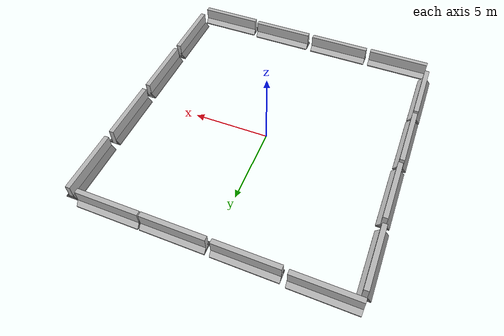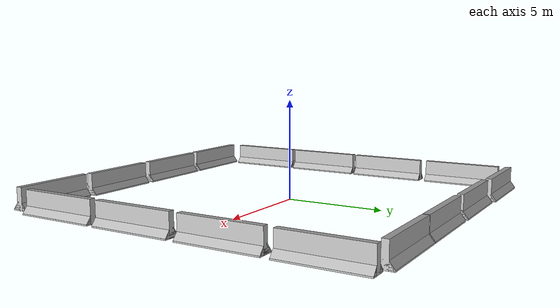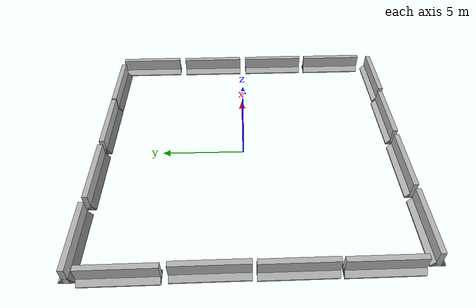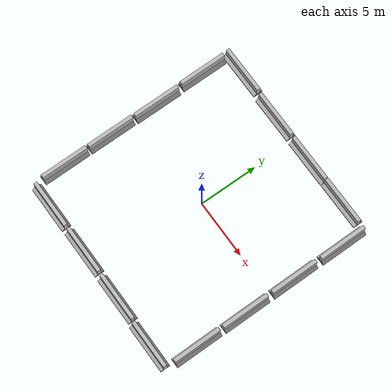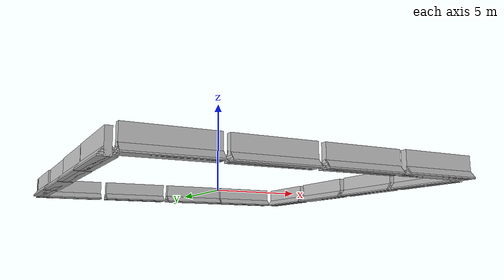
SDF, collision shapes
<?xml version='1.0'?>
<sdf version='1.7'>
  <model name='simple_barriers'>
    <model name='jersey_barrier'>
      <static>1</static>
      <link name='link'>
        <visual name='visual'>
          <geometry>
            <mesh>
              <uri>model://jersey_barrier/meshes/jersey_barrier.dae</uri>
            </mesh>
          </geometry>
        </visual>
        <collision name='upright'>
          <pose>0 0 0.5715 0 -0 0</pose>
          <geometry>
            <box>
              <size>4.06542 0.3063 1.143</size>
            </box>
          </geometry>
          <surface/>
        </collision>
        <collision name='base'>
          <pose>0 0 0.032258 0 -0 0</pose>
          <geometry>
            <box>
              <size>4.06542 0.8107 0.064516</size>
            </box>
          </geometry>
          <surface/>
        </collision>
        <collision name='base2'>
          <pose>0 0 0.1 0 -0 0</pose>
          <geometry>
            <box>
              <size>4.06542 0.65 0.1</size>
            </box>
          </geometry>
          <surface/>
        </collision>
        <collision name='base3'>
          <pose>0 0 0.2 0 -0 0</pose>
          <geometry>
            <box>
              <size>4.06542 0.5 0.1</size>
            </box>
          </geometry>
          <surface/>
        </collision>
        <collision name='left-angle'>
          <pose>0 -0.224 0.2401 0.9 -0 0</pose>
          <geometry>
            <box>
              <size>4.06542 0.5 0.064516</size>
            </box>
          </geometry>
          <surface/>
        </collision>
        <collision name='right-angle'>
          <pose>0 0.224 0.2401 -0.9 0 0</pose>
          <geometry>
            <box>
              <size>4.06542 0.5 0.064516</size>
            </box>
          </geometry>
          <surface/>
        </collision>
      </link>
      <pose>6.72232 -9.57254 0 0 -0 0</pose>
    </model>
    <model name='jersey_barrier_clone'>
      <static>1</static>
      <link name='link'>
        <visual name='visual'>
          <geometry>
            <mesh>
              <uri>model://jersey_barrier/meshes/jersey_barrier.dae</uri>
            </mesh>
          </geometry>
        </visual>
        <collision name='upright'>
          <pose>0 0 0.5715 0 -0 0</pose>
          <geometry>
            <box>
              <size>4.06542 0.3063 1.143</size>
            </box>
          </geometry>
          <surface/>
        </collision>
        <collision name='base'>
          <pose>0 0 0.032258 0 -0 0</pose>
          <geometry>
            <box>
              <size>4.06542 0.8107 0.064516</size>
            </box>
          </geometry>
          <surface/>
        </collision>
        <collision name='base2'>
          <pose>0 0 0.1 0 -0 0</pose>
          <geometry>
            <box>
              <size>4.06542 0.65 0.1</size>
            </box>
          </geometry>
          <surface/>
        </collision>
        <collision name='base3'>
          <pose>0 0 0.2 0 -0 0</pose>
          <geometry>
            <box>
              <size>4.06542 0.5 0.1</size>
            </box>
          </geometry>
          <surface/>
        </collision>
        <collision name='left-angle'>
          <pose>0 -0.224 0.2401 0.9 -0 0</pose>
          <geometry>
            <box>
              <size>4.06542 0.5 0.064516</size>
            </box>
          </geometry>
          <surface/>
        </collision>
        <collision name='right-angle'>
          <pose>0 0.224 0.2401 -0.9 0 0</pose>
          <geometry>
            <box>
              <size>4.06542 0.5 0.064516</size>
            </box>
          </geometry>
          <surface/>
        </collision>
      </link>
      <pose>2.41736 -9.45601 0 0 -0 0</pose>
    </model>
    <model name='jersey_barrier_clone_0'>
      <static>1</static>
      <link name='link'>
        <visual name='visual'>
          <geometry>
            <mesh>
              <uri>model://jersey_barrier/meshes/jersey_barrier.dae</uri>
            </mesh>
          </geometry>
        </visual>
        <collision name='upright'>
          <pose>0 0 0.5715 0 -0 0</pose>
          <geometry>
            <box>
              <size>4.06542 0.3063 1.143</size>
            </box>
          </geometry>
          <surface/>
        </collision>
        <collision name='base'>
          <pose>0 0 0.032258 0 -0 0</pose>
          <geometry>
            <box>
              <size>4.06542 0.8107 0.064516</size>
            </box>
          </geometry>
          <surface/>
        </collision>
        <collision name='base2'>
          <pose>0 0 0.1 0 -0 0</pose>
          <geometry>
            <box>
              <size>4.06542 0.65 0.1</size>
            </box>
          </geometry>
          <surface/>
        </collision>
        <collision name='base3'>
          <pose>0 0 0.2 0 -0 0</pose>
          <geometry>
            <box>
              <size>4.06542 0.5 0.1</size>
            </box>
          </geometry>
          <surface/>
        </collision>
        <collision name='left-angle'>
          <pose>0 -0.224 0.2401 0.9 -0 0</pose>
          <geometry>
            <box>
              <size>4.06542 0.5 0.064516</size>
            </box>
          </geometry>
          <surface/>
        </collision>
        <collision name='right-angle'>
          <pose>0 0.224 0.2401 -0.9 0 0</pose>
          <geometry>
            <box>
              <size>4.06542 0.5 0.064516</size>
            </box>
          </geometry>
          <surface/>
        </collision>
      </link>
      <pose>-1.99235 -9.42689 0 0 -0 0</pose>
    </model>
    <model name='jersey_barrier_clone_1'>
      <static>1</static>
      <link name='link'>
        <visual name='visual'>
          <geometry>
            <mesh>
              <uri>model://jersey_barrier/meshes/jersey_barrier.dae</uri>
            </mesh>
          </geometry>
        </visual>
        <collision name='upright'>
          <pose>0 0 0.5715 0 -0 0</pose>
          <geometry>
            <box>
              <size>4.06542 0.3063 1.143</size>
            </box>
          </geometry>
          <surface/>
        </collision>
        <collision name='base'>
          <pose>0 0 0.032258 0 -0 0</pose>
          <geometry>
            <box>
              <size>4.06542 0.8107 0.064516</size>
            </box>
          </geometry>
          <surface/>
        </collision>
        <collision name='base2'>
          <pose>0 0 0.1 0 -0 0</pose>
          <geometry>
            <box>
              <size>4.06542 0.65 0.1</size>
            </box>
          </geometry>
          <surface/>
        </collision>
        <collision name='base3'>
          <pose>0 0 0.2 0 -0 0</pose>
          <geometry>
            <box>
              <size>4.06542 0.5 0.1</size>
            </box>
          </geometry>
          <surface/>
        </collision>
        <collision name='left-angle'>
          <pose>0 -0.224 0.2401 0.9 -0 0</pose>
          <geometry>
            <box>
              <size>4.06542 0.5 0.064516</size>
            </box>
          </geometry>
          <surface/>
        </collision>
        <collision name='right-angle'>
          <pose>0 0.224 0.2401 -0.9 0 0</pose>
          <geometry>
            <box>
              <size>4.06542 0.5 0.064516</size>
            </box>
          </geometry>
          <surface/>
        </collision>
      </link>
      <pose>-6.36451 -9.45293 0 0 -0 0</pose>
    </model>
    <model name='jersey_barrier_clone_1_clone_clone'>
      <static>1</static>
      <link name='link'>
        <visual name='visual'>
          <geometry>
            <mesh>
              <uri>model://jersey_barrier/meshes/jersey_barrier.dae</uri>
            </mesh>
          </geometry>
        </visual>
        <collision name='upright'>
          <pose>0 0 0.5715 0 -0 0</pose>
          <geometry>
            <box>
              <size>4.06542 0.3063 1.143</size>
            </box>
          </geometry>
          <surface/>
        </collision>
        <collision name='base'>
          <pose>0 0 0.032258 0 -0 0</pose>
          <geometry>
            <box>
              <size>4.06542 0.8107 0.064516</size>
            </box>
          </geometry>
          <surface/>
        </collision>
        <collision name='base2'>
          <pose>0 0 0.1 0 -0 0</pose>
          <geometry>
            <box>
              <size>4.06542 0.65 0.1</size>
            </box>
          </geometry>
          <surface/>
        </collision>
        <collision name='base3'>
          <pose>0 0 0.2 0 -0 0</pose>
          <geometry>
            <box>
              <size>4.06542 0.5 0.1</size>
            </box>
          </geometry>
          <surface/>
        </collision>
        <collision name='left-angle'>
          <pose>0 -0.224 0.2401 0.9 -0 0</pose>
          <geometry>
            <box>
              <size>4.06542 0.5 0.064516</size>
            </box>
          </geometry>
          <surface/>
        </collision>
        <collision name='right-angle'>
          <pose>0 0.224 0.2401 -0.9 0 0</pose>
          <geometry>
            <box>
              <size>4.06542 0.5 0.064516</size>
            </box>
          </geometry>
          <surface/>
        </collision>
      </link>
      <pose>-6.6933 8.73444 0 0 -0 0</pose>
    </model>
    <model name='jersey_barrier_clone_1_clone_clone_0'>
      <static>1</static>
      <link name='link'>
        <visual name='visual'>
          <geometry>
            <mesh>
              <uri>model://jersey_barrier/meshes/jersey_barrier.dae</uri>
            </mesh>
          </geometry>
        </visual>
        <collision name='upright'>
          <pose>0 0 0.5715 0 -0 0</pose>
          <geometry>
            <box>
              <size>4.06542 0.3063 1.143</size>
            </box>
          </geometry>
          <surface/>
        </collision>
        <collision name='base'>
          <pose>0 0 0.032258 0 -0 0</pose>
          <geometry>
            <box>
              <size>4.06542 0.8107 0.064516</size>
            </box>
          </geometry>
          <surface/>
        </collision>
        <collision name='base2'>
          <pose>0 0 0.1 0 -0 0</pose>
          <geometry>
            <box>
              <size>4.06542 0.65 0.1</size>
            </box>
          </geometry>
          <surface/>
        </collision>
        <collision name='base3'>
          <pose>0 0 0.2 0 -0 0</pose>
          <geometry>
            <box>
              <size>4.06542 0.5 0.1</size>
            </box>
          </geometry>
          <surface/>
        </collision>
        <collision name='left-angle'>
          <pose>0 -0.224 0.2401 0.9 -0 0</pose>
          <geometry>
            <box>
              <size>4.06542 0.5 0.064516</size>
            </box>
          </geometry>
          <surface/>
        </collision>
        <collision name='right-angle'>
          <pose>0 0.224 0.2401 -0.9 0 0</pose>
          <geometry>
            <box>
              <size>4.06542 0.5 0.064516</size>
            </box>
          </geometry>
          <surface/>
        </collision>
      </link>
      <pose>-2.28503 8.63557 0 0 -0 0</pose>
    </model>
    <model name='jersey_barrier_clone_1_clone_clone_1'>
      <static>1</static>
      <link name='link'>
        <visual name='visual'>
          <geometry>
            <mesh>
              <uri>model://jersey_barrier/meshes/jersey_barrier.dae</uri>
            </mesh>
          </geometry>
        </visual>
        <collision name='upright'>
          <pose>0 0 0.5715 0 -0 0</pose>
          <geometry>
            <box>
              <size>4.06542 0.3063 1.143</size>
            </box>
          </geometry>
          <surface/>
        </collision>
        <collision name='base'>
          <pose>0 0 0.032258 0 -0 0</pose>
          <geometry>
            <box>
              <size>4.06542 0.8107 0.064516</size>
            </box>
          </geometry>
          <surface/>
        </collision>
        <collision name='base2'>
          <pose>0 0 0.1 0 -0 0</pose>
          <geometry>
            <box>
              <size>4.06542 0.65 0.1</size>
            </box>
          </geometry>
          <surface/>
        </collision>
        <collision name='base3'>
          <pose>0 0 0.2 0 -0 0</pose>
          <geometry>
            <box>
              <size>4.06542 0.5 0.1</size>
            </box>
          </geometry>
          <surface/>
        </collision>
        <collision name='left-angle'>
          <pose>0 -0.224 0.2401 0.9 -0 0</pose>
          <geometry>
            <box>
              <size>4.06542 0.5 0.064516</size>
            </box>
          </geometry>
          <surface/>
        </collision>
        <collision name='right-angle'>
          <pose>0 0.224 0.2401 -0.9 0 0</pose>
          <geometry>
            <box>
              <size>4.06542 0.5 0.064516</size>
            </box>
          </geometry>
          <surface/>
        </collision>
      </link>
      <pose>2.07504 8.61102 0 0 -0 0</pose>
    </model>
    <model name='jersey_barrier_clone_1_clone_clone_1_clone'>
      <static>1</static>
      <link name='link'>
        <visual name='visual'>
          <geometry>
            <mesh>
              <uri>model://jersey_barrier/meshes/jersey_barrier.dae</uri>
            </mesh>
          </geometry>
        </visual>
        <collision name='upright'>
          <pose>0 0 0.5715 0 -0 0</pose>
          <geometry>
            <box>
              <size>4.06542 0.3063 1.143</size>
            </box>
          </geometry>
          <surface/>
        </collision>
        <collision name='base'>
          <pose>0 0 0.032258 0 -0 0</pose>
          <geometry>
            <box>
              <size>4.06542 0.8107 0.064516</size>
            </box>
          </geometry>
          <surface/>
        </collision>
        <collision name='base2'>
          <pose>0 0 0.1 0 -0 0</pose>
          <geometry>
            <box>
              <size>4.06542 0.65 0.1</size>
            </box>
          </geometry>
          <surface/>
        </collision>
        <collision name='base3'>
          <pose>0 0 0.2 0 -0 0</pose>
          <geometry>
            <box>
              <size>4.06542 0.5 0.1</size>
            </box>
          </geometry>
          <surface/>
        </collision>
        <collision name='left-angle'>
          <pose>0 -0.224 0.2401 0.9 -0 0</pose>
          <geometry>
            <box>
              <size>4.06542 0.5 0.064516</size>
            </box>
          </geometry>
          <surface/>
        </collision>
        <collision name='right-angle'>
          <pose>0 0.224 0.2401 -0.9 0 0</pose>
          <geometry>
            <box>
              <size>4.06542 0.5 0.064516</size>
            </box>
          </geometry>
          <surface/>
        </collision>
      </link>
      <pose>6.22276 8.61449 0 0 -0 0</pose>
    </model>
    <model name='jersey_barrier_clone_2_clone_clone'>
      <static>1</static>
      <link name='link'>
        <visual name='visual'>
          <geometry>
            <mesh>
              <uri>model://jersey_barrier/meshes/jersey_barrier.dae</uri>
            </mesh>
          </geometry>
        </visual>
        <collision name='upright'>
          <pose>0 0 0.5715 0 -0 0</pose>
          <geometry>
            <box>
              <size>4.06542 0.3063 1.143</size>
            </box>
          </geometry>
          <surface/>
        </collision>
        <collision name='base'>
          <pose>0 0 0.032258 0 -0 0</pose>
          <geometry>
            <box>
              <size>4.06542 0.8107 0.064516</size>
            </box>
          </geometry>
          <surface/>
        </collision>
        <collision name='base2'>
          <pose>0 0 0.1 0 -0 0</pose>
          <geometry>
            <box>
              <size>4.06542 0.65 0.1</size>
            </box>
          </geometry>
          <surface/>
        </collision>
        <collision name='base3'>
          <pose>0 0 0.2 0 -0 0</pose>
          <geometry>
            <box>
              <size>4.06542 0.5 0.1</size>
            </box>
          </geometry>
          <surface/>
        </collision>
        <collision name='left-angle'>
          <pose>0 -0.224 0.2401 0.9 -0 0</pose>
          <geometry>
            <box>
              <size>4.06542 0.5 0.064516</size>
            </box>
          </geometry>
          <surface/>
        </collision>
        <collision name='right-angle'>
          <pose>0 0.224 0.2401 -0.9 0 0</pose>
          <geometry>
            <box>
              <size>4.06542 0.5 0.064516</size>
            </box>
          </geometry>
          <surface/>
        </collision>
      </link>
      <pose>-8.52553 -6.72648 0 0 0 -1.56654</pose>
    </model>
    <model name='jersey_barrier_clone_2_clone_clone_0'>
      <static>1</static>
      <link name='link'>
        <visual name='visual'>
          <geometry>
            <mesh>
              <uri>model://jersey_barrier/meshes/jersey_barrier.dae</uri>
            </mesh>
          </geometry>
        </visual>
        <collision name='upright'>
          <pose>0 0 0.5715 0 -0 0</pose>
          <geometry>
            <box>
              <size>4.06542 0.3063 1.143</size>
            </box>
          </geometry>
          <surface/>
        </collision>
        <collision name='base'>
          <pose>0 0 0.032258 0 -0 0</pose>
          <geometry>
            <box>
              <size>4.06542 0.8107 0.064516</size>
            </box>
          </geometry>
          <surface/>
        </collision>
        <collision name='base2'>
          <pose>0 0 0.1 0 -0 0</pose>
          <geometry>
            <box>
              <size>4.06542 0.65 0.1</size>
            </box>
          </geometry>
          <surface/>
        </collision>
        <collision name='base3'>
          <pose>0 0 0.2 0 -0 0</pose>
          <geometry>
            <box>
              <size>4.06542 0.5 0.1</size>
            </box>
          </geometry>
          <surface/>
        </collision>
        <collision name='left-angle'>
          <pose>0 -0.224 0.2401 0.9 -0 0</pose>
          <geometry>
            <box>
              <size>4.06542 0.5 0.064516</size>
            </box>
          </geometry>
          <surface/>
        </collision>
        <collision name='right-angle'>
          <pose>0 0.224 0.2401 -0.9 0 0</pose>
          <geometry>
            <box>
              <size>4.06542 0.5 0.064516</size>
            </box>
          </geometry>
          <surface/>
        </collision>
      </link>
      <pose>-8.52348 -2.48786 0 0 0 -1.56654</pose>
    </model>
    <model name='jersey_barrier_clone_2_clone_clone_0_clone'>
      <static>1</static>
      <link name='link'>
        <visual name='visual'>
          <geometry>
            <mesh>
              <uri>model://jersey_barrier/meshes/jersey_barrier.dae</uri>
            </mesh>
          </geometry>
        </visual>
        <collision name='upright'>
          <pose>0 0 0.5715 0 -0 0</pose>
          <geometry>
            <box>
              <size>4.06542 0.3063 1.143</size>
            </box>
          </geometry>
          <surface/>
        </collision>
        <collision name='base'>
          <pose>0 0 0.032258 0 -0 0</pose>
          <geometry>
            <box>
              <size>4.06542 0.8107 0.064516</size>
            </box>
          </geometry>
          <surface/>
        </collision>
        <collision name='base2'>
          <pose>0 0 0.1 0 -0 0</pose>
          <geometry>
            <box>
              <size>4.06542 0.65 0.1</size>
            </box>
          </geometry>
          <surface/>
        </collision>
        <collision name='base3'>
          <pose>0 0 0.2 0 -0 0</pose>
          <geometry>
            <box>
              <size>4.06542 0.5 0.1</size>
            </box>
          </geometry>
          <surface/>
        </collision>
        <collision name='left-angle'>
          <pose>0 -0.224 0.2401 0.9 -0 0</pose>
          <geometry>
            <box>
              <size>4.06542 0.5 0.064516</size>
            </box>
          </geometry>
          <surface/>
        </collision>
        <collision name='right-angle'>
          <pose>0 0.224 0.2401 -0.9 0 0</pose>
          <geometry>
            <box>
              <size>4.06542 0.5 0.064516</size>
            </box>
          </geometry>
          <surface/>
        </collision>
      </link>
      <pose>-8.50183 1.79467 0 0 0 -1.56654</pose>
    </model>
    <model name='jersey_barrier_clone_2_clone_clone_0_clone_clone'>
      <static>1</static>
      <link name='link'>
        <visual name='visual'>
          <geometry>
            <mesh>
              <uri>model://jersey_barrier/meshes/jersey_barrier.dae</uri>
            </mesh>
          </geometry>
        </visual>
        <collision name='upright'>
          <pose>0 0 0.5715 0 -0 0</pose>
          <geometry>
            <box>
              <size>4.06542 0.3063 1.143</size>
            </box>
          </geometry>
          <surface/>
        </collision>
        <collision name='base'>
          <pose>0 0 0.032258 0 -0 0</pose>
          <geometry>
            <box>
              <size>4.06542 0.8107 0.064516</size>
            </box>
          </geometry>
          <surface/>
        </collision>
        <collision name='base2'>
          <pose>0 0 0.1 0 -0 0</pose>
          <geometry>
            <box>
              <size>4.06542 0.65 0.1</size>
            </box>
          </geometry>
          <surface/>
        </collision>
        <collision name='base3'>
          <pose>0 0 0.2 0 -0 0</pose>
          <geometry>
            <box>
              <size>4.06542 0.5 0.1</size>
            </box>
          </geometry>
          <surface/>
        </collision>
        <collision name='left-angle'>
          <pose>0 -0.224 0.2401 0.9 -0 0</pose>
          <geometry>
            <box>
              <size>4.06542 0.5 0.064516</size>
            </box>
          </geometry>
          <surface/>
        </collision>
        <collision name='right-angle'>
          <pose>0 0.224 0.2401 -0.9 0 0</pose>
          <geometry>
            <box>
              <size>4.06542 0.5 0.064516</size>
            </box>
          </geometry>
          <surface/>
        </collision>
      </link>
      <pose>-8.57626 6.20587 0 0 0 -1.56654</pose>
    </model>
    <model name='jersey_barrier_clone_2_clone_clone_0_clone_clone_clone'>
      <static>1</static>
      <link name='link'>
        <visual name='visual'>
          <geometry>
            <mesh>
              <uri>model://jersey_barrier/meshes/jersey_barrier.dae</uri>
            </mesh>
          </geometry>
        </visual>
        <collision name='upright'>
          <pose>0 0 0.5715 0 -0 0</pose>
          <geometry>
            <box>
              <size>4.06542 0.3063 1.143</size>
            </box>
          </geometry>
          <surface/>
        </collision>
        <collision name='base'>
          <pose>0 0 0.032258 0 -0 0</pose>
          <geometry>
            <box>
              <size>4.06542 0.8107 0.064516</size>
            </box>
          </geometry>
          <surface/>
        </collision>
        <collision name='base2'>
          <pose>0 0 0.1 0 -0 0</pose>
          <geometry>
            <box>
              <size>4.06542 0.65 0.1</size>
            </box>
          </geometry>
          <surface/>
        </collision>
        <collision name='base3'>
          <pose>0 0 0.2 0 -0 0</pose>
          <geometry>
            <box>
              <size>4.06542 0.5 0.1</size>
            </box>
          </geometry>
          <surface/>
        </collision>
        <collision name='left-angle'>
          <pose>0 -0.224 0.2401 0.9 -0 0</pose>
          <geometry>
            <box>
              <size>4.06542 0.5 0.064516</size>
            </box>
          </geometry>
          <surface/>
        </collision>
        <collision name='right-angle'>
          <pose>0 0.224 0.2401 -0.9 0 0</pose>
          <geometry>
            <box>
              <size>4.06542 0.5 0.064516</size>
            </box>
          </geometry>
          <surface/>
        </collision>
      </link>
      <pose>8.83451 6.60152 0 0 0 -1.56654</pose>
    </model>
    <model name='jersey_barrier_clone_2_clone_clone_0_clone_clone_clone_0'>
      <static>1</static>
      <link name='link'>
        <visual name='visual'>
          <geometry>
            <mesh>
              <uri>model://jersey_barrier/meshes/jersey_barrier.dae</uri>
            </mesh>
          </geometry>
        </visual>
        <collision name='upright'>
          <pose>0 0 0.5715 0 -0 0</pose>
          <geometry>
            <box>
              <size>4.06542 0.3063 1.143</size>
            </box>
          </geometry>
          <surface/>
        </collision>
        <collision name='base'>
          <pose>0 0 0.032258 0 -0 0</pose>
          <geometry>
            <box>
              <size>4.06542 0.8107 0.064516</size>
            </box>
          </geometry>
          <surface/>
        </collision>
        <collision name='base2'>
          <pose>0 0 0.1 0 -0 0</pose>
          <geometry>
            <box>
              <size>4.06542 0.65 0.1</size>
            </box>
          </geometry>
          <surface/>
        </collision>
        <collision name='base3'>
          <pose>0 0 0.2 0 -0 0</pose>
          <geometry>
            <box>
              <size>4.06542 0.5 0.1</size>
            </box>
          </geometry>
          <surface/>
        </collision>
        <collision name='left-angle'>
          <pose>0 -0.224 0.2401 0.9 -0 0</pose>
          <geometry>
            <box>
              <size>4.06542 0.5 0.064516</size>
            </box>
          </geometry>
          <surface/>
        </collision>
        <collision name='right-angle'>
          <pose>0 0.224 0.2401 -0.9 0 0</pose>
          <geometry>
            <box>
              <size>4.06542 0.5 0.064516</size>
            </box>
          </geometry>
          <surface/>
        </collision>
      </link>
      <pose>8.81549 2.10146 0 0 0 -1.56654</pose>
    </model>
    <model name='jersey_barrier_clone_2_clone_clone_0_clone_clone_clone_1'>
      <static>1</static>
      <link name='link'>
        <visual name='visual'>
          <geometry>
            <mesh>
              <uri>model://jersey_barrier/meshes/jersey_barrier.dae</uri>
            </mesh>
          </geometry>
        </visual>
        <collision name='upright'>
          <pose>0 0 0.5715 0 -0 0</pose>
          <geometry>
            <box>
              <size>4.06542 0.3063 1.143</size>
            </box>
          </geometry>
          <surface/>
        </collision>
        <collision name='base'>
          <pose>0 0 0.032258 0 -0 0</pose>
          <geometry>
            <box>
              <size>4.06542 0.8107 0.064516</size>
            </box>
          </geometry>
          <surface/>
        </collision>
        <collision name='base2'>
          <pose>0 0 0.1 0 -0 0</pose>
          <geometry>
            <box>
              <size>4.06542 0.65 0.1</size>
            </box>
          </geometry>
          <surface/>
        </collision>
        <collision name='base3'>
          <pose>0 0 0.2 0 -0 0</pose>
          <geometry>
            <box>
              <size>4.06542 0.5 0.1</size>
            </box>
          </geometry>
          <surface/>
        </collision>
        <collision name='left-angle'>
          <pose>0 -0.224 0.2401 0.9 -0 0</pose>
          <geometry>
            <box>
              <size>4.06542 0.5 0.064516</size>
            </box>
          </geometry>
          <surface/>
        </collision>
        <collision name='right-angle'>
          <pose>0 0.224 0.2401 -0.9 0 0</pose>
          <geometry>
            <box>
              <size>4.06542 0.5 0.064516</size>
            </box>
          </geometry>
          <surface/>
        </collision>
      </link>
      <pose>8.81268 -2.36915 0 0 0 -1.56654</pose>
    </model>
    <model name='jersey_barrier_clone_2_clone_clone_0_clone_clone_clone_2'>
      <static>1</static>
      <link name='link'>
        <visual name='visual'>
          <geometry>
            <mesh>
              <uri>model://jersey_barrier/meshes/jersey_barrier.dae</uri>
            </mesh>
          </geometry>
        </visual>
        <collision name='upright'>
          <pose>0 0 0.5715 0 -0 0</pose>
          <geometry>
            <box>
              <size>4.06542 0.3063 1.143</size>
            </box>
          </geometry>
          <surface/>
        </collision>
        <collision name='base'>
          <pose>0 0 0.032258 0 -0 0</pose>
          <geometry>
            <box>
              <size>4.06542 0.8107 0.064516</size>
            </box>
          </geometry>
          <surface/>
        </collision>
        <collision name='base2'>
          <pose>0 0 0.1 0 -0 0</pose>
          <geometry>
            <box>
              <size>4.06542 0.65 0.1</size>
            </box>
          </geometry>
          <surface/>
        </collision>
        <collision name='base3'>
          <pose>0 0 0.2 0 -0 0</pose>
          <geometry>
            <box>
              <size>4.06542 0.5 0.1</size>
            </box>
          </geometry>
          <surface/>
        </collision>
        <collision name='left-angle'>
          <pose>0 -0.224 0.2401 0.9 -0 0</pose>
          <geometry>
            <box>
              <size>4.06542 0.5 0.064516</size>
            </box>
          </geometry>
          <surface/>
        </collision>
        <collision name='right-angle'>
          <pose>0 0.224 0.2401 -0.9 0 0</pose>
          <geometry>
            <box>
              <size>4.06542 0.5 0.064516</size>
            </box>
          </geometry>
          <surface/>
        </collision>
      </link>
      <pose>8.80711 -6.76694 0 0 0 -1.56654</pose>
    </model>
    <static>0</static>
    <allow_auto_disable>1</allow_auto_disable>
  </model>
</sdf>
